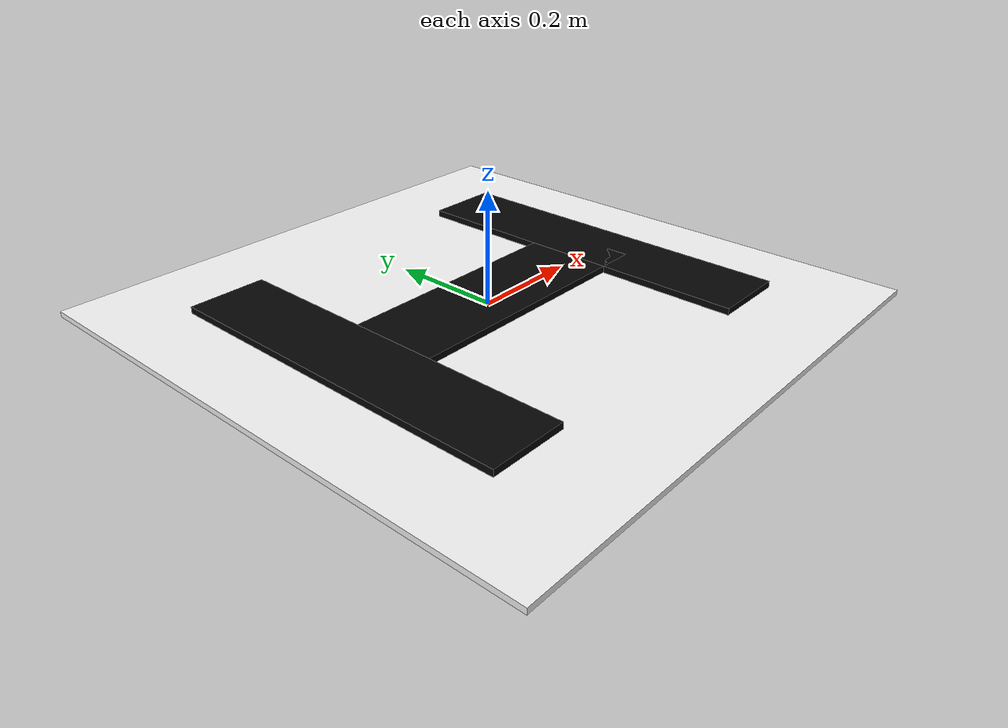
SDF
<?xml version="1.0" ?>
<sdf version="1.9">
  <model name="h_marker">
    <static>true</static>
    <link name="link">

      <!-- Белая подложка 1x1 м (центр в начале координат, лежит на земле) -->
      <visual name="board">
        <geometry>
          <box>
            <size>1 1 0.01</size>
          </box>
        </geometry>
        <material>
          <ambient>0.9 0.9 0.9 1</ambient>
          <diffuse>0.95 0.95 0.95 1</diffuse>
        </material>
      </visual>
      <collision name="board_collision">
        <geometry>
          <box>
            <size>1 1 0.01</size>
          </box>
        </geometry>
      </collision>

      <!-- Левая ножка буквы H (тёмная) -->
      <visual name="leg_left">
        <pose>-0.29 0 0.012 0 0 0</pose>
        <geometry>
          <box>
            <size>0.14 0.66 0.012</size>
          </box>
        </geometry>
        <material>
          <ambient>0.02 0.02 0.02 1</ambient>
          <diffuse>0.02 0.02 0.02 1</diffuse>
        </material>
      </visual>

      <!-- Правая ножка буквы H (тёмная) -->
      <visual name="leg_right">
        <pose>0.29 0 0.012 0 0 0</pose>
        <geometry>
          <box>
            <size>0.14 0.66 0.012</size>
          </box>
        </geometry>
        <material>
          <ambient>0.02 0.02 0.02 1</ambient>
          <diffuse>0.02 0.02 0.02 1</diffuse>
        </material>
      </visual>

      <!-- Перекладина буквы H (тёмная) -->
      <visual name="crossbar">
        <pose>0 0 0.012 0 0 0</pose>
        <geometry>
          <box>
            <size>0.58 0.16 0.012</size>
          </box>
        </geometry>
        <material>
          <ambient>0.02 0.02 0.02 1</ambient>
          <diffuse>0.02 0.02 0.02 1</diffuse>
        </material>
      </visual>

    </link>
  </model>
</sdf>
